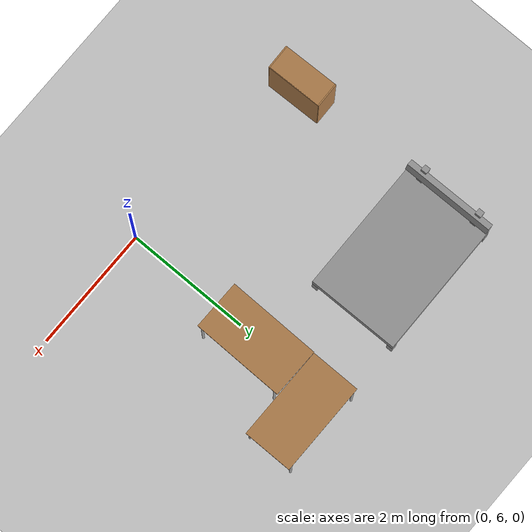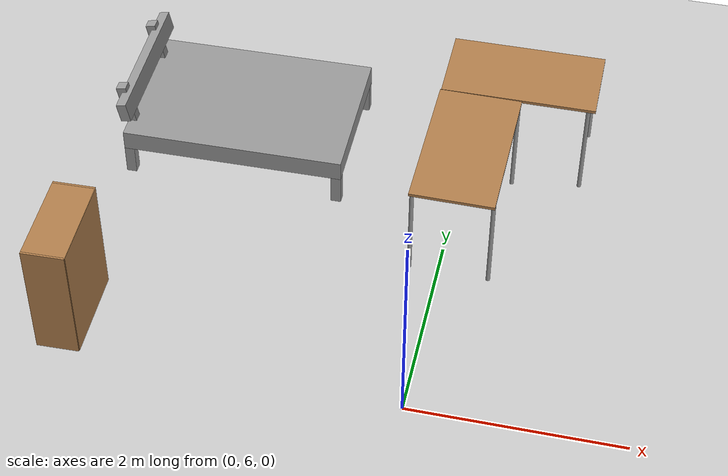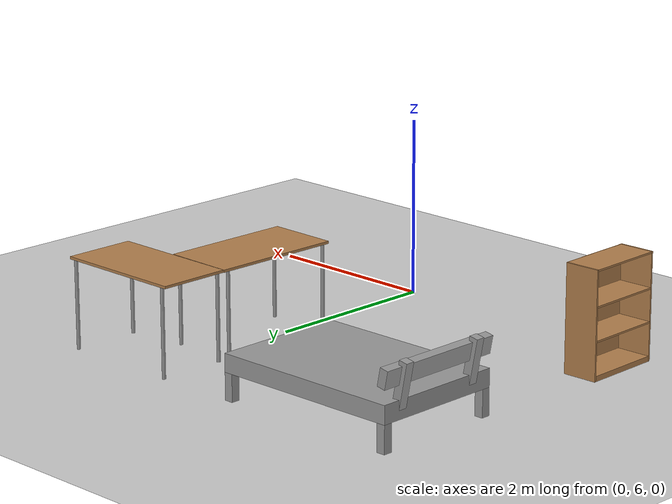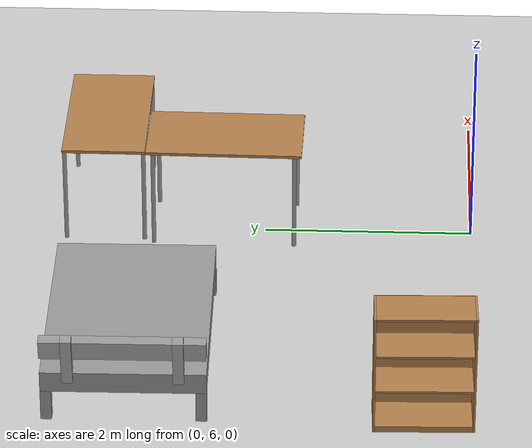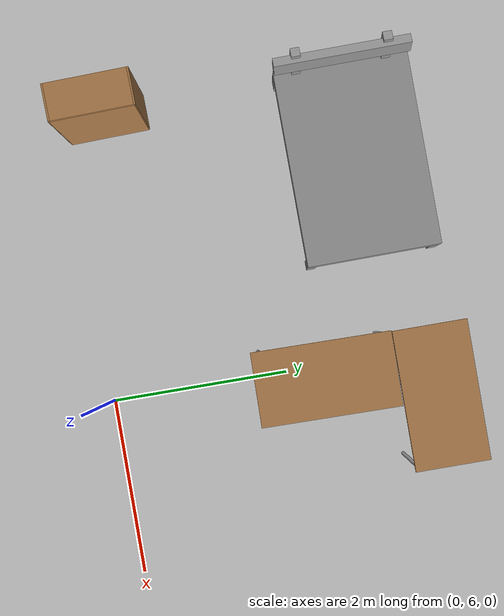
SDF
<sdf version="1.6">
 <world name="default">
  <model name="ground_plane">
   <static>1</static>
   <link name="link">
    <collision name="collision">
     <geometry><plane><normal>0 0 1</normal><size>100 100</size></plane></geometry>
     <surface><friction><ode><mu>100</mu><mu2>50</mu2></ode></friction></surface>
    </collision>
    <visual name="visual">
     <cast_shadows>0</cast_shadows>
     <geometry><plane><normal>0 0 1</normal><size>100 100</size></plane></geometry>
     <material>
      <script><uri>file://media/materials/scripts/gazebo.material</uri><name>Gazebo/Grey</name></script>
     </material>
    </visual>
   </link>
  </model>
  <model name="table_clone">
   <static>1</static>
   <link name="link">
    <collision name="surface">
     <pose>0 0 1 0 -0 0</pose>
     <geometry><box><size>1.5 0.8 0.03</size></box></geometry>
     <surface><friction><ode><mu>0.6</mu><mu2>0.6</mu2></ode></friction></surface>
    </collision>
    <visual name="visual1">
     <pose>0 0 1 0 -0 0</pose>
     <geometry><box><size>1.5 0.8 0.03</size></box></geometry>
     <material>
      <script><uri>file://media/materials/scripts/gazebo.material</uri><name>Gazebo/Wood</name></script>
     </material>
    </visual>
    <collision name="front_left_leg">
     <pose>0.68 0.38 0.5 0 -0 0</pose>
     <geometry><cylinder><radius>0.02</radius><length>1</length></cylinder></geometry>
    </collision>
    <visual name="front_left_leg">
     <pose>0.68 0.38 0.5 0 -0 0</pose>
     <geometry><cylinder><radius>0.02</radius><length>1</length></cylinder></geometry>
     <material>
      <script><uri>file://media/materials/scripts/gazebo.material</uri><name>Gazebo/Grey</name></script>
     </material>
    </visual>
    <collision name="front_right_leg">
     <pose>0.68 -0.38 0.5 0 -0 0</pose>
     <geometry><cylinder><radius>0.02</radius><length>1</length></cylinder></geometry>
    </collision>
    <visual name="front_right_leg">
     <pose>0.68 -0.38 0.5 0 -0 0</pose>
     <geometry><cylinder><radius>0.02</radius><length>1</length></cylinder></geometry>
     <material>
      <script><uri>file://media/materials/scripts/gazebo.material</uri><name>Gazebo/Grey</name></script>
     </material>
    </visual>
    <collision name="back_right_leg">
     <pose>-0.68 -0.38 0.5 0 -0 0</pose>
     <geometry><cylinder><radius>0.02</radius><length>1</length></cylinder></geometry>
    </collision>
    <visual name="back_right_leg">
     <pose>-0.68 -0.38 0.5 0 -0 0</pose>
     <geometry><cylinder><radius>0.02</radius><length>1</length></cylinder></geometry>
     <material>
      <script><uri>file://media/materials/scripts/gazebo.material</uri><name>Gazebo/Grey</name></script>
     </material>
    </visual>
    <collision name="back_left_leg">
     <pose>-0.68 0.38 0.5 0 -0 0</pose>
     <geometry><cylinder><radius>0.02</radius><length>1</length></cylinder></geometry>
    </collision>
    <visual name="back_left_leg">
     <pose>-0.68 0.38 0.5 0 -0 0</pose>
     <geometry><cylinder><radius>0.02</radius><length>1</length></cylinder></geometry>
     <material>
      <script><uri>file://media/materials/scripts/gazebo.material</uri><name>Gazebo/Grey</name></script>
     </material>
    </visual>
   </link>
   <pose>0.109174 8.39051 0 0 -0 1.55851</pose>
  </model>
  <model name="table_clone_0">
   <static>1</static>
   <link name="link">
    <collision name="surface">
     <pose>0 0 1 0 -0 0</pose>
     <geometry><box><size>1.5 0.8 0.03</size></box></geometry>
     <surface><friction><ode><mu>0.6</mu><mu2>0.6</mu2></ode></friction></surface>
    </collision>
    <visual name="visual1">
     <pose>0 0 1 0 -0 0</pose>
     <geometry><box><size>1.5 0.8 0.03</size></box></geometry>
     <material>
      <script><uri>file://media/materials/scripts/gazebo.material</uri><name>Gazebo/Wood</name></script>
     </material>
    </visual>
    <collision name="front_left_leg">
     <pose>0.68 0.38 0.5 0 -0 0</pose>
     <geometry><cylinder><radius>0.02</radius><length>1</length></cylinder></geometry>
    </collision>
    <visual name="front_left_leg">
     <pose>0.68 0.38 0.5 0 -0 0</pose>
     <geometry><cylinder><radius>0.02</radius><length>1</length></cylinder></geometry>
     <material>
      <script><uri>file://media/materials/scripts/gazebo.material</uri><name>Gazebo/Grey</name></script>
     </material>
    </visual>
    <collision name="front_right_leg">
     <pose>0.68 -0.38 0.5 0 -0 0</pose>
     <geometry><cylinder><radius>0.02</radius><length>1</length></cylinder></geometry>
    </collision>
    <visual name="front_right_leg">
     <pose>0.68 -0.38 0.5 0 -0 0</pose>
     <geometry><cylinder><radius>0.02</radius><length>1</length></cylinder></geometry>
     <material>
      <script><uri>file://media/materials/scripts/gazebo.material</uri><name>Gazebo/Grey</name></script>
     </material>
    </visual>
    <collision name="back_right_leg">
     <pose>-0.68 -0.38 0.5 0 -0 0</pose>
     <geometry><cylinder><radius>0.02</radius><length>1</length></cylinder></geometry>
    </collision>
    <visual name="back_right_leg">
     <pose>-0.68 -0.38 0.5 0 -0 0</pose>
     <geometry><cylinder><radius>0.02</radius><length>1</length></cylinder></geometry>
     <material>
      <script><uri>file://media/materials/scripts/gazebo.material</uri><name>Gazebo/Grey</name></script>
     </material>
    </visual>
    <collision name="back_left_leg">
     <pose>-0.68 0.38 0.5 0 -0 0</pose>
     <geometry><cylinder><radius>0.02</radius><length>1</length></cylinder></geometry>
    </collision>
    <visual name="back_left_leg">
     <pose>-0.68 0.38 0.5 0 -0 0</pose>
     <geometry><cylinder><radius>0.02</radius><length>1</length></cylinder></geometry>
     <material>
      <script><uri>file://media/materials/scripts/gazebo.material</uri><name>Gazebo/Grey</name></script>
     </material>
    </visual>
   </link>
   <pose>0.477957 9.54981 0 0 -0 0</pose>
  </model>
  <model name="bookshelf_clone_1_clone">
   <static>1</static>
   <link name="link">
    <inertial><mass>1</mass></inertial>
    <collision name="back">
     <pose>0 0.005 0.6 0 -0 0</pose>
     <geometry><box><size>0.9 0.01 1.2</size></box></geometry>
    </collision>
    <visual name="visual1">
     <pose>0 0.005 0.6 0 -0 0</pose>
     <geometry><box><size>0.9 0.01 1.2</size></box></geometry>
     <material>
      <script><uri>file://media/materials/scripts/gazebo.material</uri><name>Gazebo/Wood</name></script>
     </material>
    </visual>
    <collision name="left_side">
     <pose>0.45 -0.195 0.6 0 -0 0</pose>
     <geometry><box><size>0.02 0.4 1.2</size></box></geometry>
    </collision>
    <visual name="visual2">
     <pose>0.45 -0.195 0.6 0 -0 0</pose>
     <geometry><box><size>0.02 0.4 1.2</size></box></geometry>
     <material>
      <script><uri>file://media/materials/scripts/gazebo.material</uri><name>Gazebo/Wood</name></script>
     </material>
    </visual>
    <collision name="right_side">
     <pose>-0.45 -0.195 0.6 0 -0 0</pose>
     <geometry><box><size>0.02 0.4 1.2</size></box></geometry>
    </collision>
    <visual name="visual3">
     <pose>-0.45 -0.195 0.6 0 -0 0</pose>
     <geometry><box><size>0.02 0.4 1.2</size></box></geometry>
     <material>
      <script><uri>file://media/materials/scripts/gazebo.material</uri><name>Gazebo/Wood</name></script>
     </material>
    </visual>
    <collision name="bottom">
     <pose>0 -0.195 0.03 0 -0 0</pose>
     <geometry><box><size>0.88 0.4 0.06</size></box></geometry>
    </collision>
    <visual name="visual4">
     <pose>0 -0.195 0.03 0 -0 0</pose>
     <geometry><box><size>0.88 0.4 0.06</size></box></geometry>
     <material>
      <script><uri>file://media/materials/scripts/gazebo.material</uri><name>Gazebo/Wood</name></script>
     </material>
    </visual>
    <collision name="top">
     <pose>0 -0.195 1.19 0 -0 0</pose>
     <geometry><box><size>0.88 0.4 0.02</size></box></geometry>
    </collision>
    <visual name="visual5">
     <pose>0 -0.195 1.19 0 -0 0</pose>
     <geometry><box><size>0.88 0.4 0.02</size></box></geometry>
     <material>
      <script><uri>file://media/materials/scripts/gazebo.material</uri><name>Gazebo/Wood</name></script>
     </material>
    </visual>
    <collision name="low_shelf">
     <pose>0 -0.195 0.43 0 -0 0</pose>
     <geometry><box><size>0.88 0.4 0.02</size></box></geometry>
    </collision>
    <visual name="visual6">
     <pose>0 -0.195 0.43 0 -0 0</pose>
     <geometry><box><size>0.88 0.4 0.02</size></box></geometry>
     <material>
      <script><uri>file://media/materials/scripts/gazebo.material</uri><name>Gazebo/Wood</name></script>
     </material>
    </visual>
    <collision name="high_shelf">
     <pose>0 -0.195 0.8 0 -0 0</pose>
     <geometry><box><size>0.88 0.4 0.02</size></box></geometry>
    </collision>
    <visual name="visual7">
     <pose>0 -0.195 0.8 0 -0 0</pose>
     <geometry><box><size>0.88 0.4 0.02</size></box></geometry>
     <material>
      <script><uri>file://media/materials/scripts/gazebo.material</uri><name>Gazebo/Wood</name></script>
     </material>
    </visual>
   </link>
   <pose>-3.01236 6.46267 0 0 0 -1.54488</pose>
  </model>
  <model name="bed_clone">
   <link name="link_0">
    <pose>0.088421 0 0.349817 0 -0 0</pose>
    <inertial>
     <mass>1</mass>
     <inertia>
      <ixx>0.166667</ixx>
      <ixy>0</ixy>
      <ixz>0</ixz>
      <iyy>0.166667</iyy>
      <iyz>0</iyz>
      <izz>0.166667</izz>
     </inertia>
    </inertial>
    <visual name="visual">
     <geometry><box><size>2.2 1.5 0.2</size></box></geometry>
     <material>
      <lighting>1</lighting>
      <script><uri>file://media/materials/scripts/gazebo.material</uri><name>Gazebo/Grey</name></script>
      <shader type="pixel"><normal_map>__default__</normal_map></shader>
      <ambient>0.3 0.3 0.3 1</ambient>
      <diffuse>0.7 0.7 0.7 1</diffuse>
      <specular>0.01 0.01 0.01 1</specular>
      <emissive>0 0 0 1</emissive>
     </material>
    </visual>
    <collision name="collision">
     <geometry><box><size>2.2 1.5 0.2</size></box></geometry>
     <surface>
      <friction>
       <ode><mu>1</mu><mu2>1</mu2><fdir1>0 0 0</fdir1><slip1>0</slip1><slip2>0</slip2></ode>
       <torsional>
        <coefficient>1</coefficient>
        <patch_radius>0</patch_radius>
        <surface_radius>0</surface_radius>
        <use_patch_radius>1</use_patch_radius>
        <ode><slip>0</slip></ode>
       </torsional>
      </friction>
      <bounce><restitution_coefficient>0</restitution_coefficient><threshold>1e+06</threshold></bounce>
      <contact>
       <collide_without_contact>0</collide_without_contact>
       <collide_without_contact_bitmask>1</collide_without_contact_bitmask>
       <collide_bitmask>1</collide_bitmask>
       <ode>
        <soft_cfm>0</soft_cfm>
        <soft_erp>0.2</soft_erp>
        <kp>1e+13</kp>
        <kd>1</kd>
        <max_vel>0.01</max_vel>
        <min_depth>0</min_depth>
       </ode>
       <bullet>
        <split_impulse>1</split_impulse>
        <split_impulse_penetration_threshold>-0.01</split_impulse_penetration_threshold>
        <soft_cfm>0</soft_cfm>
        <soft_erp>0.2</soft_erp>
        <kp>1e+13</kp>
        <kd>1</kd>
       </bullet>
      </contact>
     </surface>
    </collision>
   </link>
   <link name="link_2">
    <pose>0.088421 0 0.099817 0 -0 0</pose>
    <inertial>
     <mass>1</mass>
     <inertia>
      <ixx>0.166667</ixx>
      <ixy>0</ixy>
      <ixz>0</ixz>
      <iyy>0.166667</iyy>
      <iyz>0</iyz>
      <izz>0.166667</izz>
     </inertia>
    </inertial>
    <visual name="visual">
     <geometry><box><size>0.1 0.1 0.3</size></box></geometry>
     <material>
      <lighting>1</lighting>
      <script><uri>file://media/materials/scripts/gazebo.material</uri><name>Gazebo/Grey</name></script>
      <shader type="pixel"><normal_map>__default__</normal_map></shader>
      <ambient>0.3 0.3 0.3 1</ambient>
      <diffuse>0.7 0.7 0.7 1</diffuse>
      <specular>0.01 0.01 0.01 1</specular>
      <emissive>0 0 0 1</emissive>
     </material>
    </visual>
    <collision name="collision">
     <geometry><box><size>0.1 0.1 0.3</size></box></geometry>
     <surface>
      <friction>
       <ode><mu>1</mu><mu2>1</mu2><fdir1>0 0 0</fdir1><slip1>0</slip1><slip2>0</slip2></ode>
       <torsional>
        <coefficient>1</coefficient>
        <patch_radius>0</patch_radius>
        <surface_radius>0</surface_radius>
        <use_patch_radius>1</use_patch_radius>
        <ode><slip>0</slip></ode>
       </torsional>
      </friction>
      <bounce><restitution_coefficient>0</restitution_coefficient><threshold>1e+06</threshold></bounce>
      <contact>
       <collide_without_contact>0</collide_without_contact>
       <collide_without_contact_bitmask>1</collide_without_contact_bitmask>
       <collide_bitmask>1</collide_bitmask>
       <ode>
        <soft_cfm>0</soft_cfm>
        <soft_erp>0.2</soft_erp>
        <kp>1e+13</kp>
        <kd>1</kd>
        <max_vel>0.01</max_vel>
        <min_depth>0</min_depth>
       </ode>
       <bullet>
        <split_impulse>1</split_impulse>
        <split_impulse_penetration_threshold>-0.01</split_impulse_penetration_threshold>
        <soft_cfm>0</soft_cfm>
        <soft_erp>0.2</soft_erp>
        <kp>1e+13</kp>
        <kd>1</kd>
       </bullet>
      </contact>
     </surface>
    </collision>
   </link>
   <link name="link_2_clone">
    <pose>-0.961579 -0.7 0.099817 0 -0 0</pose>
    <inertial>
     <mass>1</mass>
     <inertia>
      <ixx>0.166667</ixx>
      <ixy>0</ixy>
      <ixz>0</ixz>
      <iyy>0.166667</iyy>
      <iyz>0</iyz>
      <izz>0.166667</izz>
     </inertia>
    </inertial>
    <visual name="visual">
     <geometry><box><size>0.1 0.1 0.3</size></box></geometry>
     <material>
      <lighting>1</lighting>
      <script><uri>file://media/materials/scripts/gazebo.material</uri><name>Gazebo/Grey</name></script>
      <shader type="pixel"><normal_map>__default__</normal_map></shader>
      <ambient>0.3 0.3 0.3 1</ambient>
      <diffuse>0.7 0.7 0.7 1</diffuse>
      <specular>0.01 0.01 0.01 1</specular>
      <emissive>0 0 0 1</emissive>
     </material>
    </visual>
    <collision name="collision">
     <geometry><box><size>0.1 0.1 0.3</size></box></geometry>
     <surface>
      <friction>
       <ode><mu>1</mu><mu2>1</mu2><fdir1>0 0 0</fdir1><slip1>0</slip1><slip2>0</slip2></ode>
       <torsional>
        <coefficient>1</coefficient>
        <patch_radius>0</patch_radius>
        <surface_radius>0</surface_radius>
        <use_patch_radius>1</use_patch_radius>
        <ode><slip>0</slip></ode>
       </torsional>
      </friction>
      <bounce><restitution_coefficient>0</restitution_coefficient><threshold>1e+06</threshold></bounce>
      <contact>
       <collide_without_contact>0</collide_without_contact>
       <collide_without_contact_bitmask>1</collide_without_contact_bitmask>
       <collide_bitmask>1</collide_bitmask>
       <ode>
        <soft_cfm>0</soft_cfm>
        <soft_erp>0.2</soft_erp>
        <kp>1e+13</kp>
        <kd>1</kd>
        <max_vel>0.01</max_vel>
        <min_depth>0</min_depth>
       </ode>
       <bullet>
        <split_impulse>1</split_impulse>
        <split_impulse_penetration_threshold>-0.01</split_impulse_penetration_threshold>
        <soft_cfm>0</soft_cfm>
        <soft_erp>0.2</soft_erp>
        <kp>1e+13</kp>
        <kd>1</kd>
       </bullet>
      </contact>
     </surface>
    </collision>
   </link>
   <link name="link_2_clone_0">
    <pose>1.13842 -0.7 0.099817 0 -0 0</pose>
    <inertial>
     <mass>1</mass>
     <inertia>
      <ixx>0.166667</ixx>
      <ixy>0</ixy>
      <ixz>0</ixz>
      <iyy>0.166667</iyy>
      <iyz>0</iyz>
      <izz>0.166667</izz>
     </inertia>
    </inertial>
    <visual name="visual">
     <geometry><box><size>0.1 0.1 0.3</size></box></geometry>
     <material>
      <lighting>1</lighting>
      <script><uri>file://media/materials/scripts/gazebo.material</uri><name>Gazebo/Grey</name></script>
      <shader type="pixel"><normal_map>__default__</normal_map></shader>
      <ambient>0.3 0.3 0.3 1</ambient>
      <diffuse>0.7 0.7 0.7 1</diffuse>
      <specular>0.01 0.01 0.01 1</specular>
      <emissive>0 0 0 1</emissive>
     </material>
    </visual>
    <collision name="collision">
     <geometry><box><size>0.1 0.1 0.3</size></box></geometry>
     <surface>
      <friction>
       <ode><mu>1</mu><mu2>1</mu2><fdir1>0 0 0</fdir1><slip1>0</slip1><slip2>0</slip2></ode>
       <torsional>
        <coefficient>1</coefficient>
        <patch_radius>0</patch_radius>
        <surface_radius>0</surface_radius>
        <use_patch_radius>1</use_patch_radius>
        <ode><slip>0</slip></ode>
       </torsional>
      </friction>
      <bounce><restitution_coefficient>0</restitution_coefficient><threshold>1e+06</threshold></bounce>
      <contact>
       <collide_without_contact>0</collide_without_contact>
       <collide_without_contact_bitmask>1</collide_without_contact_bitmask>
       <collide_bitmask>1</collide_bitmask>
       <ode>
        <soft_cfm>0</soft_cfm>
        <soft_erp>0.2</soft_erp>
        <kp>1e+13</kp>
        <kd>1</kd>
        <max_vel>0.01</max_vel>
        <min_depth>0</min_depth>
       </ode>
       <bullet>
        <split_impulse>1</split_impulse>
        <split_impulse_penetration_threshold>-0.01</split_impulse_penetration_threshold>
        <soft_cfm>0</soft_cfm>
        <soft_erp>0.2</soft_erp>
        <kp>1e+13</kp>
        <kd>1</kd>
       </bullet>
      </contact>
     </surface>
    </collision>
   </link>
   <link name="link_2_clone_1">
    <pose>1.13842 0.7 0.099817 0 -0 0</pose>
    <inertial>
     <mass>1</mass>
     <inertia>
      <ixx>0.166667</ixx>
      <ixy>0</ixy>
      <ixz>0</ixz>
      <iyy>0.166667</iyy>
      <iyz>0</iyz>
      <izz>0.166667</izz>
     </inertia>
    </inertial>
    <visual name="visual">
     <geometry><box><size>0.1 0.1 0.3</size></box></geometry>
     <material>
      <lighting>1</lighting>
      <script><uri>file://media/materials/scripts/gazebo.material</uri><name>Gazebo/Grey</name></script>
      <shader type="pixel"><normal_map>__default__</normal_map></shader>
      <ambient>0.3 0.3 0.3 1</ambient>
      <diffuse>0.7 0.7 0.7 1</diffuse>
      <specular>0.01 0.01 0.01 1</specular>
      <emissive>0 0 0 1</emissive>
     </material>
    </visual>
    <collision name="collision">
     <geometry><box><size>0.1 0.1 0.3</size></box></geometry>
     <surface>
      <friction>
       <ode><mu>1</mu><mu2>1</mu2><fdir1>0 0 0</fdir1><slip1>0</slip1><slip2>0</slip2></ode>
       <torsional>
        <coefficient>1</coefficient>
        <patch_radius>0</patch_radius>
        <surface_radius>0</surface_radius>
        <use_patch_radius>1</use_patch_radius>
        <ode><slip>0</slip></ode>
       </torsional>
      </friction>
      <bounce><restitution_coefficient>0</restitution_coefficient><threshold>1e+06</threshold></bounce>
      <contact>
       <collide_without_contact>0</collide_without_contact>
       <collide_without_contact_bitmask>1</collide_without_contact_bitmask>
       <collide_bitmask>1</collide_bitmask>
       <ode>
        <soft_cfm>0</soft_cfm>
        <soft_erp>0.2</soft_erp>
        <kp>1e+13</kp>
        <kd>1</kd>
        <max_vel>0.01</max_vel>
        <min_depth>0</min_depth>
       </ode>
       <bullet>
        <split_impulse>1</split_impulse>
        <split_impulse_penetration_threshold>-0.01</split_impulse_penetration_threshold>
        <soft_cfm>0</soft_cfm>
        <soft_erp>0.2</soft_erp>
        <kp>1e+13</kp>
        <kd>1</kd>
       </bullet>
      </contact>
     </surface>
    </collision>
   </link>
   <link name="link_2_clone_2">
    <pose>-0.961579 0.7 0.099817 0 -0 0</pose>
    <inertial>
     <mass>1</mass>
     <inertia>
      <ixx>0.166667</ixx>
      <ixy>0</ixy>
      <ixz>0</ixz>
      <iyy>0.166667</iyy>
      <iyz>0</iyz>
      <izz>0.166667</izz>
     </inertia>
    </inertial>
    <visual name="visual">
     <geometry><box><size>0.1 0.1 0.3</size></box></geometry>
     <material>
      <lighting>1</lighting>
      <script><uri>file://media/materials/scripts/gazebo.material</uri><name>Gazebo/Grey</name></script>
      <shader type="pixel"><normal_map>__default__</normal_map></shader>
      <ambient>0.3 0.3 0.3 1</ambient>
      <diffuse>0.7 0.7 0.7 1</diffuse>
      <specular>0.01 0.01 0.01 1</specular>
      <emissive>0 0 0 1</emissive>
     </material>
    </visual>
    <collision name="collision">
     <geometry><box><size>0.1 0.1 0.3</size></box></geometry>
     <surface>
      <friction>
       <ode><mu>1</mu><mu2>1</mu2><fdir1>0 0 0</fdir1><slip1>0</slip1><slip2>0</slip2></ode>
       <torsional>
        <coefficient>1</coefficient>
        <patch_radius>0</patch_radius>
        <surface_radius>0</surface_radius>
        <use_patch_radius>1</use_patch_radius>
        <ode><slip>0</slip></ode>
       </torsional>
      </friction>
      <bounce><restitution_coefficient>0</restitution_coefficient><threshold>1e+06</threshold></bounce>
      <contact>
       <collide_without_contact>0</collide_without_contact>
       <collide_without_contact_bitmask>1</collide_without_contact_bitmask>
       <collide_bitmask>1</collide_bitmask>
       <ode>
        <soft_cfm>0</soft_cfm>
        <soft_erp>0.2</soft_erp>
        <kp>1e+13</kp>
        <kd>1</kd>
        <max_vel>0.01</max_vel>
        <min_depth>0</min_depth>
       </ode>
       <bullet>
        <split_impulse>1</split_impulse>
        <split_impulse_penetration_threshold>-0.01</split_impulse_penetration_threshold>
        <soft_cfm>0</soft_cfm>
        <soft_erp>0.2</soft_erp>
        <kp>1e+13</kp>
        <kd>1</kd>
       </bullet>
      </contact>
     </surface>
    </collision>
   </link>
   <link name="link_3">
    <pose>-1.01158 -0.5 0.599817 0 -0.196 0</pose>
    <inertial>
     <mass>1</mass>
     <inertia>
      <ixx>0.166667</ixx>
      <ixy>0</ixy>
      <ixz>0</ixz>
      <iyy>0.166667</iyy>
      <iyz>0</iyz>
      <izz>0.166667</izz>
     </inertia>
    </inertial>
    <visual name="visual">
     <geometry><box><size>0.1 0.1 0.5</size></box></geometry>
     <material>
      <lighting>1</lighting>
      <script><uri>file://media/materials/scripts/gazebo.material</uri><name>Gazebo/Grey</name></script>
      <shader type="pixel"><normal_map>__default__</normal_map></shader>
      <ambient>0.3 0.3 0.3 1</ambient>
      <diffuse>0.7 0.7 0.7 1</diffuse>
      <specular>0.01 0.01 0.01 1</specular>
      <emissive>0 0 0 1</emissive>
     </material>
    </visual>
    <collision name="collision">
     <geometry><box><size>0.1 0.1 0.5</size></box></geometry>
     <surface>
      <friction>
       <ode><mu>1</mu><mu2>1</mu2><fdir1>0 0 0</fdir1><slip1>0</slip1><slip2>0</slip2></ode>
       <torsional>
        <coefficient>1</coefficient>
        <patch_radius>0</patch_radius>
        <surface_radius>0</surface_radius>
        <use_patch_radius>1</use_patch_radius>
        <ode><slip>0</slip></ode>
       </torsional>
      </friction>
      <bounce><restitution_coefficient>0</restitution_coefficient><threshold>1e+06</threshold></bounce>
      <contact>
       <collide_without_contact>0</collide_without_contact>
       <collide_without_contact_bitmask>1</collide_without_contact_bitmask>
       <collide_bitmask>1</collide_bitmask>
       <ode>
        <soft_cfm>0</soft_cfm>
        <soft_erp>0.2</soft_erp>
        <kp>1e+13</kp>
        <kd>1</kd>
        <max_vel>0.01</max_vel>
        <min_depth>0</min_depth>
       </ode>
       <bullet>
        <split_impulse>1</split_impulse>
        <split_impulse_penetration_threshold>-0.01</split_impulse_penetration_threshold>
        <soft_cfm>0</soft_cfm>
        <soft_erp>0.2</soft_erp>
        <kp>1e+13</kp>
        <kd>1</kd>
       </bullet>
      </contact>
     </surface>
    </collision>
   </link>
   <link name="link_3_clone">
    <pose>-1.01158 0.5 0.599817 0 -0.196 0</pose>
    <inertial>
     <mass>1</mass>
     <inertia>
      <ixx>0.166667</ixx>
      <ixy>0</ixy>
      <ixz>0</ixz>
      <iyy>0.166667</iyy>
      <iyz>0</iyz>
      <izz>0.166667</izz>
     </inertia>
    </inertial>
    <visual name="visual">
     <geometry><box><size>0.1 0.1 0.5</size></box></geometry>
     <material>
      <lighting>1</lighting>
      <script><uri>file://media/materials/scripts/gazebo.material</uri><name>Gazebo/Grey</name></script>
      <shader type="pixel"><normal_map>__default__</normal_map></shader>
      <ambient>0.3 0.3 0.3 1</ambient>
      <diffuse>0.7 0.7 0.7 1</diffuse>
      <specular>0.01 0.01 0.01 1</specular>
      <emissive>0 0 0 1</emissive>
     </material>
    </visual>
    <collision name="collision">
     <geometry><box><size>0.1 0.1 0.5</size></box></geometry>
     <surface>
      <friction>
       <ode><mu>1</mu><mu2>1</mu2><fdir1>0 0 0</fdir1><slip1>0</slip1><slip2>0</slip2></ode>
       <torsional>
        <coefficient>1</coefficient>
        <patch_radius>0</patch_radius>
        <surface_radius>0</surface_radius>
        <use_patch_radius>1</use_patch_radius>
        <ode><slip>0</slip></ode>
       </torsional>
      </friction>
      <bounce><restitution_coefficient>0</restitution_coefficient><threshold>1e+06</threshold></bounce>
      <contact>
       <collide_without_contact>0</collide_without_contact>
       <collide_without_contact_bitmask>1</collide_without_contact_bitmask>
       <collide_bitmask>1</collide_bitmask>
       <ode>
        <soft_cfm>0</soft_cfm>
        <soft_erp>0.2</soft_erp>
        <kp>1e+13</kp>
        <kd>1</kd>
        <max_vel>0.01</max_vel>
        <min_depth>0</min_depth>
       </ode>
       <bullet>
        <split_impulse>1</split_impulse>
        <split_impulse_penetration_threshold>-0.01</split_impulse_penetration_threshold>
        <soft_cfm>0</soft_cfm>
        <soft_erp>0.2</soft_erp>
        <kp>1e+13</kp>
        <kd>1</kd>
       </bullet>
      </contact>
     </surface>
    </collision>
   </link>
   <link name="link_5">
    <pose>-0.982367 0 0.707711 0 -0.196 0</pose>
    <inertial>
     <mass>1</mass>
     <inertia>
      <ixx>0.166667</ixx>
      <ixy>0</ixy>
      <ixz>0</ixz>
      <iyy>0.166667</iyy>
      <iyz>0</iyz>
      <izz>0.166667</izz>
     </inertia>
    </inertial>
    <visual name="visual">
     <geometry><box><size>0.1 1.5 0.2</size></box></geometry>
     <material>
      <lighting>1</lighting>
      <script><uri>file://media/materials/scripts/gazebo.material</uri><name>Gazebo/Grey</name></script>
      <shader type="pixel"><normal_map>__default__</normal_map></shader>
      <ambient>0.3 0.3 0.3 1</ambient>
      <diffuse>0.7 0.7 0.7 1</diffuse>
      <specular>0.01 0.01 0.01 1</specular>
      <emissive>0 0 0 1</emissive>
     </material>
    </visual>
    <collision name="collision">
     <geometry><box><size>0.1 1.5 0.2</size></box></geometry>
     <surface>
      <friction>
       <ode><mu>1</mu><mu2>1</mu2><fdir1>0 0 0</fdir1><slip1>0</slip1><slip2>0</slip2></ode>
       <torsional>
        <coefficient>1</coefficient>
        <patch_radius>0</patch_radius>
        <surface_radius>0</surface_radius>
        <use_patch_radius>1</use_patch_radius>
        <ode><slip>0</slip></ode>
       </torsional>
      </friction>
      <bounce><restitution_coefficient>0</restitution_coefficient><threshold>1e+06</threshold></bounce>
      <contact>
       <collide_without_contact>0</collide_without_contact>
       <collide_without_contact_bitmask>1</collide_without_contact_bitmask>
       <collide_bitmask>1</collide_bitmask>
       <ode>
        <soft_cfm>0</soft_cfm>
        <soft_erp>0.2</soft_erp>
        <kp>1e+13</kp>
        <kd>1</kd>
        <max_vel>0.01</max_vel>
        <min_depth>0</min_depth>
       </ode>
       <bullet>
        <split_impulse>1</split_impulse>
        <split_impulse_penetration_threshold>-0.01</split_impulse_penetration_threshold>
        <soft_cfm>0</soft_cfm>
        <soft_erp>0.2</soft_erp>
        <kp>1e+13</kp>
        <kd>1</kd>
       </bullet>
      </contact>
     </surface>
    </collision>
   </link>
   <joint name="link_0_JOINT_0" type="fixed">
    <parent>link_0</parent>
    <child>link_2_clone</child>
    <physics>
     <ode><limit><cfm>0</cfm><erp>0.2</erp></limit><suspension><cfm>0</cfm><erp>0.2</erp></suspension></ode>
    </physics>
   </joint>
   <joint name="link_0_JOINT_1" type="fixed">
    <parent>link_0</parent>
    <child>link_2_clone_0</child>
    <physics>
     <ode><limit><cfm>0</cfm><erp>0.2</erp></limit><suspension><cfm>0</cfm><erp>0.2</erp></suspension></ode>
    </physics>
   </joint>
   <joint name="link_0_JOINT_2" type="fixed">
    <parent>link_0</parent>
    <child>link_2_clone_2</child>
    <physics>
     <ode><limit><cfm>0</cfm><erp>0.2</erp></limit><suspension><cfm>0</cfm><erp>0.2</erp></suspension></ode>
    </physics>
   </joint>
   <joint name="link_0_JOINT_3" type="fixed">
    <parent>link_0</parent>
    <child>link_2_clone_1</child>
    <physics>
     <ode><limit><cfm>0</cfm><erp>0.2</erp></limit><suspension><cfm>0</cfm><erp>0.2</erp></suspension></ode>
    </physics>
   </joint>
   <joint name="link_0_JOINT_4" type="fixed">
    <parent>link_0</parent>
    <child>link_2</child>
    <physics>
     <ode><limit><cfm>0</cfm><erp>0.2</erp></limit><suspension><cfm>0</cfm><erp>0.2</erp></suspension></ode>
    </physics>
   </joint>
   <joint name="link_0_JOINT_5" type="fixed">
    <parent>link_0</parent>
    <child>link_3</child>
    <physics>
     <ode><limit><cfm>0</cfm><erp>0.2</erp></limit><suspension><cfm>0</cfm><erp>0.2</erp></suspension></ode>
    </physics>
   </joint>
   <joint name="link_0_JOINT_6" type="fixed">
    <parent>link_0</parent>
    <child>link_3_clone</child>
    <physics>
     <ode><limit><cfm>0</cfm><erp>0.2</erp></limit><suspension><cfm>0</cfm><erp>0.2</erp></suspension></ode>
    </physics>
   </joint>
   <joint name="link_3_JOINT_9" type="fixed">
    <parent>link_3</parent>
    <child>link_5</child>
    <physics>
     <ode><limit><cfm>0</cfm><erp>0.2</erp></limit><suspension><cfm>0</cfm><erp>0.2</erp></suspension></ode>
    </physics>
   </joint>
   <static>0</static>
   <pose>-2.30456 9.16398 0.050183 3e-06 -1e-06 0.009813</pose>
  </model>
 </world>
</sdf>
